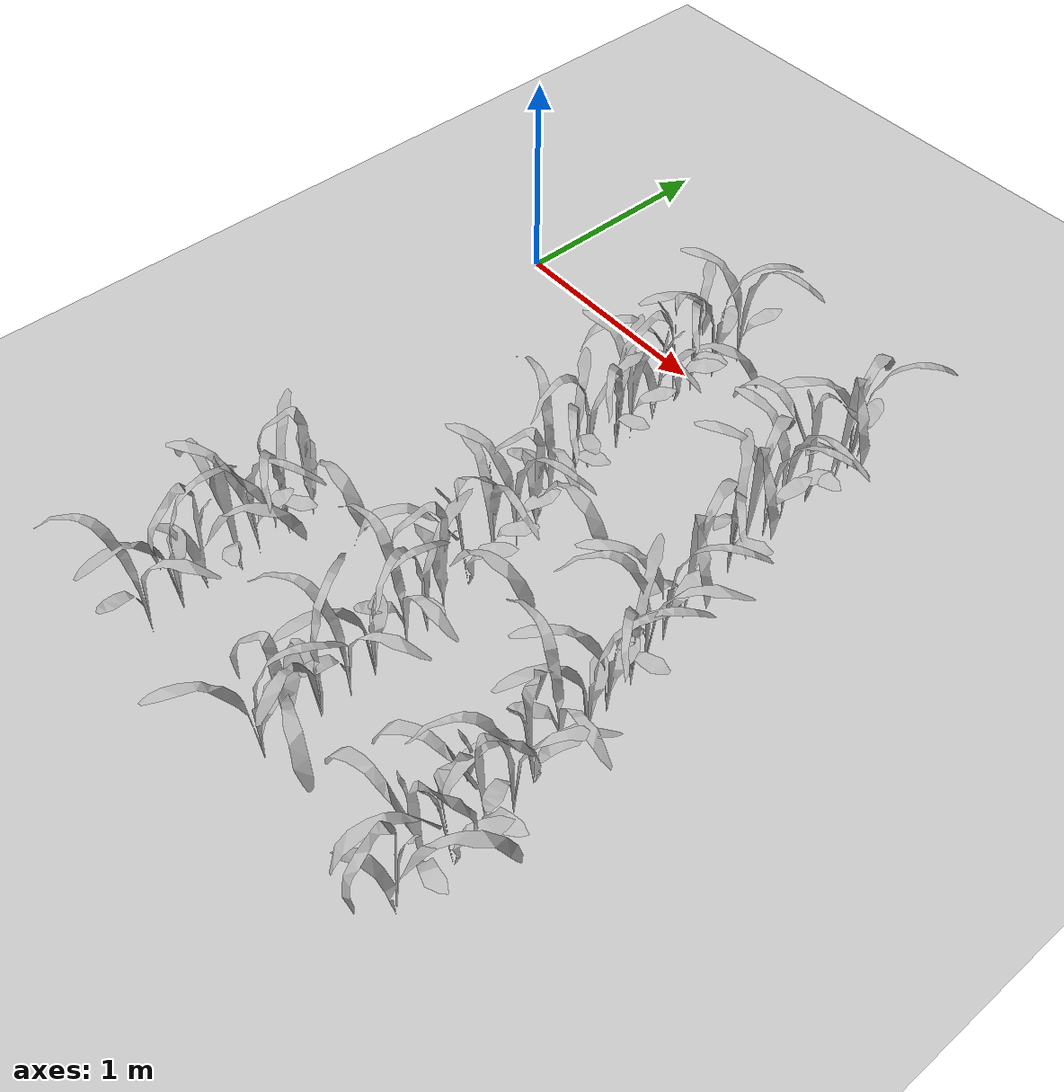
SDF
<sdf version="1.7">
 <world name="default">
  <model name="maize_02_0088">
   <pose>0.687417 -2.52858 -0.000245 -1.2e-05 -1.2e-05 2.77103</pose>
   <link name="maize_02_link">
    <inertial>
     <pose>0 0 0.01 0 -0 0</pose>
     <mass>0.3</mass>
     <inertia>
      <ixx>0.00334167</ixx>
      <ixy>0</ixy>
      <ixz>0</ixz>
      <iyy>0.00334167</iyy>
      <iyz>0</iyz>
      <izz>1.66667e-05</izz>
     </inertia>
     <pose>0 0 0.1 0 -0 0</pose>
    </inertial>
    <collision name="collision">
     <pose>0 0 0.2 0 -0 0</pose>
     <geometry><box><size>0.02 0.02 0.4</size></box></geometry>
     <surface><friction><ode><mu>10</mu><mu2>10</mu2></ode></friction></surface>
    </collision>
    <visual name="visual">
     <geometry>
      <mesh><uri>model://maize_02/meshes/maize_02.dae</uri><scale>0.683166 0.683166 0.683166</scale></mesh>
     </geometry>
    </visual>
   </link>
   <static>0</static>
  </model>
  <model name="maize_02_0089">
   <pose>0.660309 -2.37815 -1e-06 -9.6e-05 -6e-06 0.592145</pose>
   <link name="maize_02_link">
    <inertial>
     <pose>0 0 0.01 0 -0 0</pose>
     <mass>0.3</mass>
     <inertia>
      <ixx>0.00334167</ixx>
      <ixy>0</ixy>
      <ixz>0</ixz>
      <iyy>0.00334167</iyy>
      <iyz>0</iyz>
      <izz>1.66667e-05</izz>
     </inertia>
     <pose>0 0 0.1 0 -0 0</pose>
    </inertial>
    <collision name="collision">
     <pose>0 0 0.2 0 -0 0</pose>
     <geometry><box><size>0.02 0.02 0.4</size></box></geometry>
     <surface><friction><ode><mu>10</mu><mu2>10</mu2></ode></friction></surface>
    </collision>
    <visual name="visual">
     <geometry>
      <mesh><uri>model://maize_02/meshes/maize_02.dae</uri><scale>0.683166 0.683166 0.683166</scale></mesh>
     </geometry>
    </visual>
   </link>
   <static>0</static>
  </model>
  <model name="maize_01_0090">
   <pose>0.645514 -2.25838 -1e-06 -6e-06 9.6e-05 1.65375</pose>
   <link name="maize_01_link">
    <inertial>
     <pose>0 0 0.01 0 -0 0</pose>
     <mass>0.3</mass>
     <inertia>
      <ixx>0.00334167</ixx>
      <ixy>0</ixy>
      <ixz>0</ixz>
      <iyy>0.00334167</iyy>
      <iyz>0</iyz>
      <izz>1.66667e-05</izz>
     </inertia>
     <pose>0 0 0.1 0 -0 0</pose>
    </inertial>
    <collision name="collision">
     <pose>0 0 0.2 0 -0 0</pose>
     <geometry><box><size>0.02 0.02 0.4</size></box></geometry>
     <surface><friction><ode><mu>10</mu><mu2>10</mu2></ode></friction></surface>
    </collision>
    <visual name="visual">
     <geometry>
      <mesh><uri>model://maize_01/meshes/maize_01.dae</uri><scale>0.683166 0.683166 0.683166</scale></mesh>
     </geometry>
    </visual>
   </link>
   <static>0</static>
  </model>
  <model name="maize_01_0091">
   <pose>0.661195 -2.10586 -1e-06 9.6e-05 6e-06 -2.4247</pose>
   <link name="maize_01_link">
    <inertial>
     <pose>0 0 0.01 0 -0 0</pose>
     <mass>0.3</mass>
     <inertia>
      <ixx>0.00334167</ixx>
      <ixy>0</ixy>
      <ixz>0</ixz>
      <iyy>0.00334167</iyy>
      <iyz>0</iyz>
      <izz>1.66667e-05</izz>
     </inertia>
     <pose>0 0 0.1 0 -0 0</pose>
    </inertial>
    <collision name="collision">
     <pose>0 0 0.2 0 -0 0</pose>
     <geometry><box><size>0.02 0.02 0.4</size></box></geometry>
     <surface><friction><ode><mu>10</mu><mu2>10</mu2></ode></friction></surface>
    </collision>
    <visual name="visual">
     <geometry>
      <mesh><uri>model://maize_01/meshes/maize_01.dae</uri><scale>0.683166 0.683166 0.683166</scale></mesh>
     </geometry>
    </visual>
   </link>
   <static>0</static>
  </model>
  <model name="maize_02_0092">
   <pose>0.621154 -2.00023 -1e-06 -9.6e-05 6e-06 -0.539174</pose>
   <link name="maize_02_link">
    <inertial>
     <pose>0 0 0.01 0 -0 0</pose>
     <mass>0.3</mass>
     <inertia>
      <ixx>0.00334167</ixx>
      <ixy>0</ixy>
      <ixz>0</ixz>
      <iyy>0.00334167</iyy>
      <iyz>0</iyz>
      <izz>1.66667e-05</izz>
     </inertia>
     <pose>0 0 0.1 0 -0 0</pose>
    </inertial>
    <collision name="collision">
     <pose>0 0 0.2 0 -0 0</pose>
     <geometry><box><size>0.02 0.02 0.4</size></box></geometry>
     <surface><friction><ode><mu>10</mu><mu2>10</mu2></ode></friction></surface>
    </collision>
    <visual name="visual">
     <geometry>
      <mesh><uri>model://maize_02/meshes/maize_02.dae</uri><scale>0.683166 0.683166 0.683166</scale></mesh>
     </geometry>
    </visual>
   </link>
   <static>0</static>
  </model>
  <model name="maize_02_0093">
   <pose>0.619023 -1.85504 -1e-06 -6e-06 -9.6e-05 -1.67741</pose>
   <link name="maize_02_link">
    <inertial>
     <pose>0 0 0.01 0 -0 0</pose>
     <mass>0.3</mass>
     <inertia>
      <ixx>0.00334167</ixx>
      <ixy>0</ixy>
      <ixz>0</ixz>
      <iyy>0.00334167</iyy>
      <iyz>0</iyz>
      <izz>1.66667e-05</izz>
     </inertia>
     <pose>0 0 0.1 0 -0 0</pose>
    </inertial>
    <collision name="collision">
     <pose>0 0 0.2 0 -0 0</pose>
     <geometry><box><size>0.02 0.02 0.4</size></box></geometry>
     <surface><friction><ode><mu>10</mu><mu2>10</mu2></ode></friction></surface>
    </collision>
    <visual name="visual">
     <geometry>
      <mesh><uri>model://maize_02/meshes/maize_02.dae</uri><scale>0.683166 0.683166 0.683166</scale></mesh>
     </geometry>
    </visual>
   </link>
   <static>0</static>
  </model>
  <model name="maize_01_0094">
   <pose>0.606161 -1.7309 -1e-06 -9.6e-05 -6e-06 0.743839</pose>
   <link name="maize_01_link">
    <inertial>
     <pose>0 0 0.01 0 -0 0</pose>
     <mass>0.3</mass>
     <inertia>
      <ixx>0.00334167</ixx>
      <ixy>0</ixy>
      <ixz>0</ixz>
      <iyy>0.00334167</iyy>
      <iyz>0</iyz>
      <izz>1.66667e-05</izz>
     </inertia>
     <pose>0 0 0.1 0 -0 0</pose>
    </inertial>
    <collision name="collision">
     <pose>0 0 0.2 0 -0 0</pose>
     <geometry><box><size>0.02 0.02 0.4</size></box></geometry>
     <surface><friction><ode><mu>10</mu><mu2>10</mu2></ode></friction></surface>
    </collision>
    <visual name="visual">
     <geometry>
      <mesh><uri>model://maize_01/meshes/maize_01.dae</uri><scale>0.683166 0.683166 0.683166</scale></mesh>
     </geometry>
    </visual>
   </link>
   <static>0</static>
  </model>
  <model name="maize_02_0125">
   <pose>1.41549 -2.50929 -1e-06 -6e-06 9.6e-05 0.120019</pose>
   <link name="maize_02_link">
    <inertial>
     <pose>0 0 0.01 0 -0 0</pose>
     <mass>0.3</mass>
     <inertia>
      <ixx>0.00334167</ixx>
      <ixy>0</ixy>
      <ixz>0</ixz>
      <iyy>0.00334167</iyy>
      <iyz>0</iyz>
      <izz>1.66667e-05</izz>
     </inertia>
     <pose>0 0 0.1 0 -0 0</pose>
    </inertial>
    <collision name="collision">
     <pose>0 0 0.2 0 -0 0</pose>
     <geometry><box><size>0.02 0.02 0.4</size></box></geometry>
     <surface><friction><ode><mu>10</mu><mu2>10</mu2></ode></friction></surface>
    </collision>
    <visual name="visual">
     <geometry>
      <mesh><uri>model://maize_02/meshes/maize_02.dae</uri><scale>0.683166 0.683166 0.683166</scale></mesh>
     </geometry>
    </visual>
   </link>
   <static>0</static>
  </model>
  <model name="maize_01_0126">
   <pose>1.40513 -2.3932 -1e-06 -6e-06 9.6e-05 0.423891</pose>
   <link name="maize_01_link">
    <inertial>
     <pose>0 0 0.01 0 -0 0</pose>
     <mass>0.3</mass>
     <inertia>
      <ixx>0.00334167</ixx>
      <ixy>0</ixy>
      <ixz>0</ixz>
      <iyy>0.00334167</iyy>
      <iyz>0</iyz>
      <izz>1.66667e-05</izz>
     </inertia>
     <pose>0 0 0.1 0 -0 0</pose>
    </inertial>
    <collision name="collision">
     <pose>0 0 0.2 0 -0 0</pose>
     <geometry><box><size>0.02 0.02 0.4</size></box></geometry>
     <surface><friction><ode><mu>10</mu><mu2>10</mu2></ode></friction></surface>
    </collision>
    <visual name="visual">
     <geometry>
      <mesh><uri>model://maize_01/meshes/maize_01.dae</uri><scale>0.683166 0.683166 0.683166</scale></mesh>
     </geometry>
    </visual>
   </link>
   <static>0</static>
  </model>
  <model name="maize_02_0127">
   <pose>1.41237 -2.25752 -1e-06 9.6e-05 -6e-06 1.07697</pose>
   <link name="maize_02_link">
    <inertial>
     <pose>0 0 0.01 0 -0 0</pose>
     <mass>0.3</mass>
     <inertia>
      <ixx>0.00334167</ixx>
      <ixy>0</ixy>
      <ixz>0</ixz>
      <iyy>0.00334167</iyy>
      <iyz>0</iyz>
      <izz>1.66667e-05</izz>
     </inertia>
     <pose>0 0 0.1 0 -0 0</pose>
    </inertial>
    <collision name="collision">
     <pose>0 0 0.2 0 -0 0</pose>
     <geometry><box><size>0.02 0.02 0.4</size></box></geometry>
     <surface><friction><ode><mu>10</mu><mu2>10</mu2></ode></friction></surface>
    </collision>
    <visual name="visual">
     <geometry>
      <mesh><uri>model://maize_02/meshes/maize_02.dae</uri><scale>0.683166 0.683166 0.683166</scale></mesh>
     </geometry>
    </visual>
   </link>
   <static>0</static>
  </model>
  <model name="maize_02_0128">
   <pose>1.41272 -2.12539 -1e-06 -6e-06 -9.6e-05 2.60851</pose>
   <link name="maize_02_link">
    <inertial>
     <pose>0 0 0.01 0 -0 0</pose>
     <mass>0.3</mass>
     <inertia>
      <ixx>0.00334167</ixx>
      <ixy>0</ixy>
      <ixz>0</ixz>
      <iyy>0.00334167</iyy>
      <iyz>0</iyz>
      <izz>1.66667e-05</izz>
     </inertia>
     <pose>0 0 0.1 0 -0 0</pose>
    </inertial>
    <collision name="collision">
     <pose>0 0 0.2 0 -0 0</pose>
     <geometry><box><size>0.02 0.02 0.4</size></box></geometry>
     <surface><friction><ode><mu>10</mu><mu2>10</mu2></ode></friction></surface>
    </collision>
    <visual name="visual">
     <geometry>
      <mesh><uri>model://maize_02/meshes/maize_02.dae</uri><scale>0.683166 0.683166 0.683166</scale></mesh>
     </geometry>
    </visual>
   </link>
   <static>0</static>
  </model>
  <model name="maize_02_0129">
   <pose>1.3922 -2.00037 -1e-06 -6e-06 9.6e-05 0.413829</pose>
   <link name="maize_02_link">
    <inertial>
     <pose>0 0 0.01 0 -0 0</pose>
     <mass>0.3</mass>
     <inertia>
      <ixx>0.00334167</ixx>
      <ixy>0</ixy>
      <ixz>0</ixz>
      <iyy>0.00334167</iyy>
      <iyz>0</iyz>
      <izz>1.66667e-05</izz>
     </inertia>
     <pose>0 0 0.1 0 -0 0</pose>
    </inertial>
    <collision name="collision">
     <pose>0 0 0.2 0 -0 0</pose>
     <geometry><box><size>0.02 0.02 0.4</size></box></geometry>
     <surface><friction><ode><mu>10</mu><mu2>10</mu2></ode></friction></surface>
    </collision>
    <visual name="visual">
     <geometry>
      <mesh><uri>model://maize_02/meshes/maize_02.dae</uri><scale>0.683166 0.683166 0.683166</scale></mesh>
     </geometry>
    </visual>
   </link>
   <static>0</static>
  </model>
  <model name="maize_02_0130">
   <pose>1.38115 -1.84467 -0.000245 1.2e-05 1.1e-05 2.12734</pose>
   <link name="maize_02_link">
    <inertial>
     <pose>0 0 0.01 0 -0 0</pose>
     <mass>0.3</mass>
     <inertia>
      <ixx>0.00334167</ixx>
      <ixy>0</ixy>
      <ixz>0</ixz>
      <iyy>0.00334167</iyy>
      <iyz>0</iyz>
      <izz>1.66667e-05</izz>
     </inertia>
     <pose>0 0 0.1 0 -0 0</pose>
    </inertial>
    <collision name="collision">
     <pose>0 0 0.2 0 -0 0</pose>
     <geometry><box><size>0.02 0.02 0.4</size></box></geometry>
     <surface><friction><ode><mu>10</mu><mu2>10</mu2></ode></friction></surface>
    </collision>
    <visual name="visual">
     <geometry>
      <mesh><uri>model://maize_02/meshes/maize_02.dae</uri><scale>0.683166 0.683166 0.683166</scale></mesh>
     </geometry>
    </visual>
   </link>
   <static>0</static>
  </model>
  <model name="maize_02_0131">
   <pose>1.35506 -1.7265 -0.000245 -1.2e-05 1.2e-05 -2.16768</pose>
   <link name="maize_02_link">
    <inertial>
     <pose>0 0 0.01 0 -0 0</pose>
     <mass>0.3</mass>
     <inertia>
      <ixx>0.00334167</ixx>
      <ixy>0</ixy>
      <ixz>0</ixz>
      <iyy>0.00334167</iyy>
      <iyz>0</iyz>
      <izz>1.66667e-05</izz>
     </inertia>
     <pose>0 0 0.1 0 -0 0</pose>
    </inertial>
    <collision name="collision">
     <pose>0 0 0.2 0 -0 0</pose>
     <geometry><box><size>0.02 0.02 0.4</size></box></geometry>
     <surface><friction><ode><mu>10</mu><mu2>10</mu2></ode></friction></surface>
    </collision>
    <visual name="visual">
     <geometry>
      <mesh><uri>model://maize_02/meshes/maize_02.dae</uri><scale>0.683166 0.683166 0.683166</scale></mesh>
     </geometry>
    </visual>
   </link>
   <static>0</static>
  </model>
  <model name="maize_01_0132">
   <pose>1.31267 -1.6161 -0.000245 1.1e-05 1.2e-05 1.03121</pose>
   <link name="maize_01_link">
    <inertial>
     <pose>0 0 0.01 0 -0 0</pose>
     <mass>0.3</mass>
     <inertia>
      <ixx>0.00334167</ixx>
      <ixy>0</ixy>
      <ixz>0</ixz>
      <iyy>0.00334167</iyy>
      <iyz>0</iyz>
      <izz>1.66667e-05</izz>
     </inertia>
     <pose>0 0 0.1 0 -0 0</pose>
    </inertial>
    <collision name="collision">
     <pose>0 0 0.2 0 -0 0</pose>
     <geometry><box><size>0.02 0.02 0.4</size></box></geometry>
     <surface><friction><ode><mu>10</mu><mu2>10</mu2></ode></friction></surface>
    </collision>
    <visual name="visual">
     <geometry>
      <mesh><uri>model://maize_01/meshes/maize_01.dae</uri><scale>0.683166 0.683166 0.683166</scale></mesh>
     </geometry>
    </visual>
   </link>
   <static>0</static>
  </model>
  <model name="maize_01_0133">
   <pose>1.28529 -1.46938 -1e-06 -9.6e-05 -6e-06 -1.36787</pose>
   <link name="maize_01_link">
    <inertial>
     <pose>0 0 0.01 0 -0 0</pose>
     <mass>0.3</mass>
     <inertia>
      <ixx>0.00334167</ixx>
      <ixy>0</ixy>
      <ixz>0</ixz>
      <iyy>0.00334167</iyy>
      <iyz>0</iyz>
      <izz>1.66667e-05</izz>
     </inertia>
     <pose>0 0 0.1 0 -0 0</pose>
    </inertial>
    <collision name="collision">
     <pose>0 0 0.2 0 -0 0</pose>
     <geometry><box><size>0.02 0.02 0.4</size></box></geometry>
     <surface><friction><ode><mu>10</mu><mu2>10</mu2></ode></friction></surface>
    </collision>
    <visual name="visual">
     <geometry>
      <mesh><uri>model://maize_01/meshes/maize_01.dae</uri><scale>0.683166 0.683166 0.683166</scale></mesh>
     </geometry>
    </visual>
   </link>
   <static>0</static>
  </model>
  <model name="maize_02_0134">
   <pose>1.28055 -1.33179 -1e-06 -9.6e-05 -6e-06 -1.25646</pose>
   <link name="maize_02_link">
    <inertial>
     <pose>0 0 0.01 0 -0 0</pose>
     <mass>0.3</mass>
     <inertia>
      <ixx>0.00334167</ixx>
      <ixy>0</ixy>
      <ixz>0</ixz>
      <iyy>0.00334167</iyy>
      <iyz>0</iyz>
      <izz>1.66667e-05</izz>
     </inertia>
     <pose>0 0 0.1 0 -0 0</pose>
    </inertial>
    <collision name="collision">
     <pose>0 0 0.2 0 -0 0</pose>
     <geometry><box><size>0.02 0.02 0.4</size></box></geometry>
     <surface><friction><ode><mu>10</mu><mu2>10</mu2></ode></friction></surface>
    </collision>
    <visual name="visual">
     <geometry>
      <mesh><uri>model://maize_02/meshes/maize_02.dae</uri><scale>0.683166 0.683166 0.683166</scale></mesh>
     </geometry>
    </visual>
   </link>
   <static>0</static>
  </model>
  <model name="maize_02_0135">
   <pose>1.25959 -1.20017 -1e-06 -6e-06 -9.6e-05 -0.77754</pose>
   <link name="maize_02_link">
    <inertial>
     <pose>0 0 0.01 0 -0 0</pose>
     <mass>0.3</mass>
     <inertia>
      <ixx>0.00334167</ixx>
      <ixy>0</ixy>
      <ixz>0</ixz>
      <iyy>0.00334167</iyy>
      <iyz>0</iyz>
      <izz>1.66667e-05</izz>
     </inertia>
     <pose>0 0 0.1 0 -0 0</pose>
    </inertial>
    <collision name="collision">
     <pose>0 0 0.2 0 -0 0</pose>
     <geometry><box><size>0.02 0.02 0.4</size></box></geometry>
     <surface><friction><ode><mu>10</mu><mu2>10</mu2></ode></friction></surface>
    </collision>
    <visual name="visual">
     <geometry>
      <mesh><uri>model://maize_02/meshes/maize_02.dae</uri><scale>0.683166 0.683166 0.683166</scale></mesh>
     </geometry>
    </visual>
   </link>
   <static>0</static>
  </model>
  <model name="maize_01_0136">
   <pose>1.27124 -1.11322 -0.000245 1.2e-05 1.2e-05 0.73461</pose>
   <link name="maize_01_link">
    <inertial>
     <pose>0 0 0.01 0 -0 0</pose>
     <mass>0.3</mass>
     <inertia>
      <ixx>0.00334167</ixx>
      <ixy>0</ixy>
      <ixz>0</ixz>
      <iyy>0.00334167</iyy>
      <iyz>0</iyz>
      <izz>1.66667e-05</izz>
     </inertia>
     <pose>0 0 0.1 0 -0 0</pose>
    </inertial>
    <collision name="collision">
     <pose>0 0 0.2 0 -0 0</pose>
     <geometry><box><size>0.02 0.02 0.4</size></box></geometry>
     <surface><friction><ode><mu>10</mu><mu2>10</mu2></ode></friction></surface>
    </collision>
    <visual name="visual">
     <geometry>
      <mesh><uri>model://maize_01/meshes/maize_01.dae</uri><scale>0.683166 0.683166 0.683166</scale></mesh>
     </geometry>
    </visual>
   </link>
   <static>0</static>
  </model>
  <model name="maize_02_0137">
   <pose>1.1906 -0.969058 -0.000245 1.2e-05 1.2e-05 1.7714</pose>
   <link name="maize_02_link">
    <inertial>
     <pose>0 0 0.01 0 -0 0</pose>
     <mass>0.3</mass>
     <inertia>
      <ixx>0.00334167</ixx>
      <ixy>0</ixy>
      <ixz>0</ixz>
      <iyy>0.00334167</iyy>
      <iyz>0</iyz>
      <izz>1.66667e-05</izz>
     </inertia>
     <pose>0 0 0.1 0 -0 0</pose>
    </inertial>
    <collision name="collision">
     <pose>0 0 0.2 0 -0 0</pose>
     <geometry><box><size>0.02 0.02 0.4</size></box></geometry>
     <surface><friction><ode><mu>10</mu><mu2>10</mu2></ode></friction></surface>
    </collision>
    <visual name="visual">
     <geometry>
      <mesh><uri>model://maize_02/meshes/maize_02.dae</uri><scale>0.683166 0.683166 0.683166</scale></mesh>
     </geometry>
    </visual>
   </link>
   <static>0</static>
  </model>
  <model name="maize_02_0138">
   <pose>1.17972 -0.821595 -0.000245 1.2e-05 -1.2e-05 -1.7872</pose>
   <link name="maize_02_link">
    <inertial>
     <pose>0 0 0.01 0 -0 0</pose>
     <mass>0.3</mass>
     <inertia>
      <ixx>0.00334167</ixx>
      <ixy>0</ixy>
      <ixz>0</ixz>
      <iyy>0.00334167</iyy>
      <iyz>0</iyz>
      <izz>1.66667e-05</izz>
     </inertia>
     <pose>0 0 0.1 0 -0 0</pose>
    </inertial>
    <collision name="collision">
     <pose>0 0 0.2 0 -0 0</pose>
     <geometry><box><size>0.02 0.02 0.4</size></box></geometry>
     <surface><friction><ode><mu>10</mu><mu2>10</mu2></ode></friction></surface>
    </collision>
    <visual name="visual">
     <geometry>
      <mesh><uri>model://maize_02/meshes/maize_02.dae</uri><scale>0.683166 0.683166 0.683166</scale></mesh>
     </geometry>
    </visual>
   </link>
   <static>0</static>
  </model>
  <model name="maize_02_0139">
   <pose>1.13581 -0.705897 -0.000245 1.2e-05 -1.2e-05 -2.50967</pose>
   <link name="maize_02_link">
    <inertial>
     <pose>0 0 0.01 0 -0 0</pose>
     <mass>0.3</mass>
     <inertia>
      <ixx>0.00334167</ixx>
      <ixy>0</ixy>
      <ixz>0</ixz>
      <iyy>0.00334167</iyy>
      <iyz>0</iyz>
      <izz>1.66667e-05</izz>
     </inertia>
     <pose>0 0 0.1 0 -0 0</pose>
    </inertial>
    <collision name="collision">
     <pose>0 0 0.2 0 -0 0</pose>
     <geometry><box><size>0.02 0.02 0.4</size></box></geometry>
     <surface><friction><ode><mu>10</mu><mu2>10</mu2></ode></friction></surface>
    </collision>
    <visual name="visual">
     <geometry>
      <mesh><uri>model://maize_02/meshes/maize_02.dae</uri><scale>0.683166 0.683166 0.683166</scale></mesh>
     </geometry>
    </visual>
   </link>
   <static>0</static>
  </model>
  <model name="maize_02_0140">
   <pose>1.13915 -0.545653 -0.000245 1.2e-05 -1.2e-05 -1.9463</pose>
   <link name="maize_02_link">
    <inertial>
     <pose>0 0 0.01 0 -0 0</pose>
     <mass>0.3</mass>
     <inertia>
      <ixx>0.00334167</ixx>
      <ixy>0</ixy>
      <ixz>0</ixz>
      <iyy>0.00334167</iyy>
      <iyz>0</iyz>
      <izz>1.66667e-05</izz>
     </inertia>
     <pose>0 0 0.1 0 -0 0</pose>
    </inertial>
    <collision name="collision">
     <pose>0 0 0.2 0 -0 0</pose>
     <geometry><box><size>0.02 0.02 0.4</size></box></geometry>
     <surface><friction><ode><mu>10</mu><mu2>10</mu2></ode></friction></surface>
    </collision>
    <visual name="visual">
     <geometry>
      <mesh><uri>model://maize_02/meshes/maize_02.dae</uri><scale>0.683166 0.683166 0.683166</scale></mesh>
     </geometry>
    </visual>
   </link>
   <static>0</static>
  </model>
  <model name="maize_02_0141">
   <pose>1.12141 -0.447311 -0.000245 -1.2e-05 -1.2e-05 -1.03619</pose>
   <link name="maize_02_link">
    <inertial>
     <pose>0 0 0.01 0 -0 0</pose>
     <mass>0.3</mass>
     <inertia>
      <ixx>0.00334167</ixx>
      <ixy>0</ixy>
      <ixz>0</ixz>
      <iyy>0.00334167</iyy>
      <iyz>0</iyz>
      <izz>1.66667e-05</izz>
     </inertia>
     <pose>0 0 0.1 0 -0 0</pose>
    </inertial>
    <collision name="collision">
     <pose>0 0 0.2 0 -0 0</pose>
     <geometry><box><size>0.02 0.02 0.4</size></box></geometry>
     <surface><friction><ode><mu>10</mu><mu2>10</mu2></ode></friction></surface>
    </collision>
    <visual name="visual">
     <geometry>
      <mesh><uri>model://maize_02/meshes/maize_02.dae</uri><scale>0.683166 0.683166 0.683166</scale></mesh>
     </geometry>
    </visual>
   </link>
   <static>0</static>
  </model>
  <model name="maize_01_0142">
   <pose>1.10629 -0.29845 -0.000245 -1.2e-05 1.2e-05 1.37096</pose>
   <link name="maize_01_link">
    <inertial>
     <pose>0 0 0.01 0 -0 0</pose>
     <mass>0.3</mass>
     <inertia>
      <ixx>0.00334167</ixx>
      <ixy>0</ixy>
      <ixz>0</ixz>
      <iyy>0.00334167</iyy>
      <iyz>0</iyz>
      <izz>1.66667e-05</izz>
     </inertia>
     <pose>0 0 0.1 0 -0 0</pose>
    </inertial>
    <collision name="collision">
     <pose>0 0 0.2 0 -0 0</pose>
     <geometry><box><size>0.02 0.02 0.4</size></box></geometry>
     <surface><friction><ode><mu>10</mu><mu2>10</mu2></ode></friction></surface>
    </collision>
    <visual name="visual">
     <geometry>
      <mesh><uri>model://maize_01/meshes/maize_01.dae</uri><scale>0.683166 0.683166 0.683166</scale></mesh>
     </geometry>
    </visual>
   </link>
   <static>0</static>
  </model>
  <model name="maize_01_0143">
   <pose>1.08696 -0.155411 -0.000245 1.2e-05 -1.2e-05 -1.45827</pose>
   <link name="maize_01_link">
    <inertial>
     <pose>0 0 0.01 0 -0 0</pose>
     <mass>0.3</mass>
     <inertia>
      <ixx>0.00334167</ixx>
      <ixy>0</ixy>
      <ixz>0</ixz>
      <iyy>0.00334167</iyy>
      <iyz>0</iyz>
      <izz>1.66667e-05</izz>
     </inertia>
     <pose>0 0 0.1 0 -0 0</pose>
    </inertial>
    <collision name="collision">
     <pose>0 0 0.2 0 -0 0</pose>
     <geometry><box><size>0.02 0.02 0.4</size></box></geometry>
     <surface><friction><ode><mu>10</mu><mu2>10</mu2></ode></friction></surface>
    </collision>
    <visual name="visual">
     <geometry>
      <mesh><uri>model://maize_01/meshes/maize_01.dae</uri><scale>0.683166 0.683166 0.683166</scale></mesh>
     </geometry>
    </visual>
   </link>
   <static>0</static>
  </model>
  <model name="maize_02_0144">
   <pose>1.08261 -0.046526 -0.000245 1.2e-05 -1.1e-05 -1.8879</pose>
   <link name="maize_02_link">
    <inertial>
     <pose>0 0 0.01 0 -0 0</pose>
     <mass>0.3</mass>
     <inertia>
      <ixx>0.00334167</ixx>
      <ixy>0</ixy>
      <ixz>0</ixz>
      <iyy>0.00334167</iyy>
      <iyz>0</iyz>
      <izz>1.66667e-05</izz>
     </inertia>
     <pose>0 0 0.1 0 -0 0</pose>
    </inertial>
    <collision name="collision">
     <pose>0 0 0.2 0 -0 0</pose>
     <geometry><box><size>0.02 0.02 0.4</size></box></geometry>
     <surface><friction><ode><mu>10</mu><mu2>10</mu2></ode></friction></surface>
    </collision>
    <visual name="visual">
     <geometry>
      <mesh><uri>model://maize_02/meshes/maize_02.dae</uri><scale>0.683166 0.683166 0.683166</scale></mesh>
     </geometry>
    </visual>
   </link>
   <static>0</static>
  </model>
  <model name="maize_02_0145">
   <pose>1.08823 0.081273 -0.000245 -1.2e-05 -1.2e-05 0.025687</pose>
   <link name="maize_02_link">
    <inertial>
     <pose>0 0 0.01 0 -0 0</pose>
     <mass>0.3</mass>
     <inertia>
      <ixx>0.00334167</ixx>
      <ixy>0</ixy>
      <ixz>0</ixz>
      <iyy>0.00334167</iyy>
      <iyz>0</iyz>
      <izz>1.66667e-05</izz>
     </inertia>
     <pose>0 0 0.1 0 -0 0</pose>
    </inertial>
    <collision name="collision">
     <pose>0 0 0.2 0 -0 0</pose>
     <geometry><box><size>0.02 0.02 0.4</size></box></geometry>
     <surface><friction><ode><mu>10</mu><mu2>10</mu2></ode></friction></surface>
    </collision>
    <visual name="visual">
     <geometry>
      <mesh><uri>model://maize_02/meshes/maize_02.dae</uri><scale>0.683166 0.683166 0.683166</scale></mesh>
     </geometry>
    </visual>
   </link>
   <static>0</static>
  </model>
  <model name="maize_02_0146">
   <pose>1.09855 0.227697 -0.000245 -1.2e-05 -1.2e-05 -0.800553</pose>
   <link name="maize_02_link">
    <inertial>
     <pose>0 0 0.01 0 -0 0</pose>
     <mass>0.3</mass>
     <inertia>
      <ixx>0.00334167</ixx>
      <ixy>0</ixy>
      <ixz>0</ixz>
      <iyy>0.00334167</iyy>
      <iyz>0</iyz>
      <izz>1.66667e-05</izz>
     </inertia>
     <pose>0 0 0.1 0 -0 0</pose>
    </inertial>
    <collision name="collision">
     <pose>0 0 0.2 0 -0 0</pose>
     <geometry><box><size>0.02 0.02 0.4</size></box></geometry>
     <surface><friction><ode><mu>10</mu><mu2>10</mu2></ode></friction></surface>
    </collision>
    <visual name="visual">
     <geometry>
      <mesh><uri>model://maize_02/meshes/maize_02.dae</uri><scale>0.683166 0.683166 0.683166</scale></mesh>
     </geometry>
    </visual>
   </link>
   <static>0</static>
  </model>
  <model name="maize_01_0164">
   <pose>2.18876 -2.50728 -0.000245 1.2e-05 -1.2e-05 1.72864</pose>
   <link name="maize_01_link">
    <inertial>
     <pose>0 0 0.01 0 -0 0</pose>
     <mass>0.3</mass>
     <inertia>
      <ixx>0.00334167</ixx>
      <ixy>0</ixy>
      <ixz>0</ixz>
      <iyy>0.00334167</iyy>
      <iyz>0</iyz>
      <izz>1.66667e-05</izz>
     </inertia>
     <pose>0 0 0.1 0 -0 0</pose>
    </inertial>
    <collision name="collision">
     <pose>0 0 0.2 0 -0 0</pose>
     <geometry><box><size>0.02 0.02 0.4</size></box></geometry>
     <surface><friction><ode><mu>10</mu><mu2>10</mu2></ode></friction></surface>
    </collision>
    <visual name="visual">
     <geometry>
      <mesh><uri>model://maize_01/meshes/maize_01.dae</uri><scale>0.683166 0.683166 0.683166</scale></mesh>
     </geometry>
    </visual>
   </link>
   <static>0</static>
  </model>
  <model name="maize_01_0165">
   <pose>2.15943 -2.36107 -0.000245 -1.1e-05 -1.2e-05 -2.1875</pose>
   <link name="maize_01_link">
    <inertial>
     <pose>0 0 0.01 0 -0 0</pose>
     <mass>0.3</mass>
     <inertia>
      <ixx>0.00334167</ixx>
      <ixy>0</ixy>
      <ixz>0</ixz>
      <iyy>0.00334167</iyy>
      <iyz>0</iyz>
      <izz>1.66667e-05</izz>
     </inertia>
     <pose>0 0 0.1 0 -0 0</pose>
    </inertial>
    <collision name="collision">
     <pose>0 0 0.2 0 -0 0</pose>
     <geometry><box><size>0.02 0.02 0.4</size></box></geometry>
     <surface><friction><ode><mu>10</mu><mu2>10</mu2></ode></friction></surface>
    </collision>
    <visual name="visual">
     <geometry>
      <mesh><uri>model://maize_01/meshes/maize_01.dae</uri><scale>0.683166 0.683166 0.683166</scale></mesh>
     </geometry>
    </visual>
   </link>
   <static>0</static>
  </model>
  <model name="maize_01_0166">
   <pose>2.17335 -2.25363 -0.000245 1.1e-05 -1.2e-05 -1.0264</pose>
   <link name="maize_01_link">
    <inertial>
     <pose>0 0 0.01 0 -0 0</pose>
     <mass>0.3</mass>
     <inertia>
      <ixx>0.00334167</ixx>
      <ixy>0</ixy>
      <ixz>0</ixz>
      <iyy>0.00334167</iyy>
      <iyz>0</iyz>
      <izz>1.66667e-05</izz>
     </inertia>
     <pose>0 0 0.1 0 -0 0</pose>
    </inertial>
    <collision name="collision">
     <pose>0 0 0.2 0 -0 0</pose>
     <geometry><box><size>0.02 0.02 0.4</size></box></geometry>
     <surface><friction><ode><mu>10</mu><mu2>10</mu2></ode></friction></surface>
    </collision>
    <visual name="visual">
     <geometry>
      <mesh><uri>model://maize_01/meshes/maize_01.dae</uri><scale>0.683166 0.683166 0.683166</scale></mesh>
     </geometry>
    </visual>
   </link>
   <static>0</static>
  </model>
  <model name="maize_01_0167">
   <pose>2.163 -2.09353 -0.000245 -1.1e-05 -1.2e-05 -1.92198</pose>
   <link name="maize_01_link">
    <inertial>
     <pose>0 0 0.01 0 -0 0</pose>
     <mass>0.3</mass>
     <inertia>
      <ixx>0.00334167</ixx>
      <ixy>0</ixy>
      <ixz>0</ixz>
      <iyy>0.00334167</iyy>
      <iyz>0</iyz>
      <izz>1.66667e-05</izz>
     </inertia>
     <pose>0 0 0.1 0 -0 0</pose>
    </inertial>
    <collision name="collision">
     <pose>0 0 0.2 0 -0 0</pose>
     <geometry><box><size>0.02 0.02 0.4</size></box></geometry>
     <surface><friction><ode><mu>10</mu><mu2>10</mu2></ode></friction></surface>
    </collision>
    <visual name="visual">
     <geometry>
      <mesh><uri>model://maize_01/meshes/maize_01.dae</uri><scale>0.683166 0.683166 0.683166</scale></mesh>
     </geometry>
    </visual>
   </link>
   <static>0</static>
  </model>
  <model name="maize_02_0168">
   <pose>2.15395 -1.97072 -0.000245 1.2e-05 1.2e-05 3.12644</pose>
   <link name="maize_02_link">
    <inertial>
     <pose>0 0 0.01 0 -0 0</pose>
     <mass>0.3</mass>
     <inertia>
      <ixx>0.00334167</ixx>
      <ixy>0</ixy>
      <ixz>0</ixz>
      <iyy>0.00334167</iyy>
      <iyz>0</iyz>
      <izz>1.66667e-05</izz>
     </inertia>
     <pose>0 0 0.1 0 -0 0</pose>
    </inertial>
    <collision name="collision">
     <pose>0 0 0.2 0 -0 0</pose>
     <geometry><box><size>0.02 0.02 0.4</size></box></geometry>
     <surface><friction><ode><mu>10</mu><mu2>10</mu2></ode></friction></surface>
    </collision>
    <visual name="visual">
     <geometry>
      <mesh><uri>model://maize_02/meshes/maize_02.dae</uri><scale>0.683166 0.683166 0.683166</scale></mesh>
     </geometry>
    </visual>
   </link>
   <static>0</static>
  </model>
  <model name="maize_01_0169">
   <pose>2.11388 -1.84617 -0.000245 -1.2e-05 1.2e-05 -0.772921</pose>
   <link name="maize_01_link">
    <inertial>
     <pose>0 0 0.01 0 -0 0</pose>
     <mass>0.3</mass>
     <inertia>
      <ixx>0.00334167</ixx>
      <ixy>0</ixy>
      <ixz>0</ixz>
      <iyy>0.00334167</iyy>
      <iyz>0</iyz>
      <izz>1.66667e-05</izz>
     </inertia>
     <pose>0 0 0.1 0 -0 0</pose>
    </inertial>
    <collision name="collision">
     <pose>0 0 0.2 0 -0 0</pose>
     <geometry><box><size>0.02 0.02 0.4</size></box></geometry>
     <surface><friction><ode><mu>10</mu><mu2>10</mu2></ode></friction></surface>
    </collision>
    <visual name="visual">
     <geometry>
      <mesh><uri>model://maize_01/meshes/maize_01.dae</uri><scale>0.683166 0.683166 0.683166</scale></mesh>
     </geometry>
    </visual>
   </link>
   <static>0</static>
  </model>
  <model name="maize_02_0170">
   <pose>2.09047 -1.71312 -0.000245 -1.1e-05 1.2e-05 1.93584</pose>
   <link name="maize_02_link">
    <inertial>
     <pose>0 0 0.01 0 -0 0</pose>
     <mass>0.3</mass>
     <inertia>
      <ixx>0.00334167</ixx>
      <ixy>0</ixy>
      <ixz>0</ixz>
      <iyy>0.00334167</iyy>
      <iyz>0</iyz>
      <izz>1.66667e-05</izz>
     </inertia>
     <pose>0 0 0.1 0 -0 0</pose>
    </inertial>
    <collision name="collision">
     <pose>0 0 0.2 0 -0 0</pose>
     <geometry><box><size>0.02 0.02 0.4</size></box></geometry>
     <surface><friction><ode><mu>10</mu><mu2>10</mu2></ode></friction></surface>
    </collision>
    <visual name="visual">
     <geometry>
      <mesh><uri>model://maize_02/meshes/maize_02.dae</uri><scale>0.683166 0.683166 0.683166</scale></mesh>
     </geometry>
    </visual>
   </link>
   <static>0</static>
  </model>
  <model name="maize_02_0171">
   <pose>2.08967 -1.57129 -0.000245 1.2e-05 1.2e-05 0.254843</pose>
   <link name="maize_02_link">
    <inertial>
     <pose>0 0 0.01 0 -0 0</pose>
     <mass>0.3</mass>
     <inertia>
      <ixx>0.00334167</ixx>
      <ixy>0</ixy>
      <ixz>0</ixz>
      <iyy>0.00334167</iyy>
      <iyz>0</iyz>
      <izz>1.66667e-05</izz>
     </inertia>
     <pose>0 0 0.1 0 -0 0</pose>
    </inertial>
    <collision name="collision">
     <pose>0 0 0.2 0 -0 0</pose>
     <geometry><box><size>0.02 0.02 0.4</size></box></geometry>
     <surface><friction><ode><mu>10</mu><mu2>10</mu2></ode></friction></surface>
    </collision>
    <visual name="visual">
     <geometry>
      <mesh><uri>model://maize_02/meshes/maize_02.dae</uri><scale>0.683166 0.683166 0.683166</scale></mesh>
     </geometry>
    </visual>
   </link>
   <static>0</static>
  </model>
  <model name="maize_02_0172">
   <pose>2.06221 -1.45087 -0.000245 -1.2e-05 -1.2e-05 -0.103339</pose>
   <link name="maize_02_link">
    <inertial>
     <pose>0 0 0.01 0 -0 0</pose>
     <mass>0.3</mass>
     <inertia>
      <ixx>0.00334167</ixx>
      <ixy>0</ixy>
      <ixz>0</ixz>
      <iyy>0.00334167</iyy>
      <iyz>0</iyz>
      <izz>1.66667e-05</izz>
     </inertia>
     <pose>0 0 0.1 0 -0 0</pose>
    </inertial>
    <collision name="collision">
     <pose>0 0 0.2 0 -0 0</pose>
     <geometry><box><size>0.02 0.02 0.4</size></box></geometry>
     <surface><friction><ode><mu>10</mu><mu2>10</mu2></ode></friction></surface>
    </collision>
    <visual name="visual">
     <geometry>
      <mesh><uri>model://maize_02/meshes/maize_02.dae</uri><scale>0.683166 0.683166 0.683166</scale></mesh>
     </geometry>
    </visual>
   </link>
   <static>0</static>
  </model>
  <model name="maize_02_0173">
   <pose>2.03685 -1.30487 -0.000245 -1.1e-05 -1.2e-05 -1.94442</pose>
   <link name="maize_02_link">
    <inertial>
     <pose>0 0 0.01 0 -0 0</pose>
     <mass>0.3</mass>
     <inertia>
      <ixx>0.00334167</ixx>
      <ixy>0</ixy>
      <ixz>0</ixz>
      <iyy>0.00334167</iyy>
      <iyz>0</iyz>
      <izz>1.66667e-05</izz>
     </inertia>
     <pose>0 0 0.1 0 -0 0</pose>
    </inertial>
    <collision name="collision">
     <pose>0 0 0.2 0 -0 0</pose>
     <geometry><box><size>0.02 0.02 0.4</size></box></geometry>
     <surface><friction><ode><mu>10</mu><mu2>10</mu2></ode></friction></surface>
    </collision>
    <visual name="visual">
     <geometry>
      <mesh><uri>model://maize_02/meshes/maize_02.dae</uri><scale>0.683166 0.683166 0.683166</scale></mesh>
     </geometry>
    </visual>
   </link>
   <static>0</static>
  </model>
  <model name="maize_02_0174">
   <pose>2.00241 -1.19825 -0.000245 -1.2e-05 1.2e-05 2.91177</pose>
   <link name="maize_02_link">
    <inertial>
     <pose>0 0 0.01 0 -0 0</pose>
     <mass>0.3</mass>
     <inertia>
      <ixx>0.00334167</ixx>
      <ixy>0</ixy>
      <ixz>0</ixz>
      <iyy>0.00334167</iyy>
      <iyz>0</iyz>
      <izz>1.66667e-05</izz>
     </inertia>
     <pose>0 0 0.1 0 -0 0</pose>
    </inertial>
    <collision name="collision">
     <pose>0 0 0.2 0 -0 0</pose>
     <geometry><box><size>0.02 0.02 0.4</size></box></geometry>
     <surface><friction><ode><mu>10</mu><mu2>10</mu2></ode></friction></surface>
    </collision>
    <visual name="visual">
     <geometry>
      <mesh><uri>model://maize_02/meshes/maize_02.dae</uri><scale>0.683166 0.683166 0.683166</scale></mesh>
     </geometry>
    </visual>
   </link>
   <static>0</static>
  </model>
  <model name="maize_02_0175">
   <pose>1.96969 -1.07377 -0.000245 -1.2e-05 1.1e-05 -0.342991</pose>
   <link name="maize_02_link">
    <inertial>
     <pose>0 0 0.01 0 -0 0</pose>
     <mass>0.3</mass>
     <inertia>
      <ixx>0.00334167</ixx>
      <ixy>0</ixy>
      <ixz>0</ixz>
      <iyy>0.00334167</iyy>
      <iyz>0</iyz>
      <izz>1.66667e-05</izz>
     </inertia>
     <pose>0 0 0.1 0 -0 0</pose>
    </inertial>
    <collision name="collision">
     <pose>0 0 0.2 0 -0 0</pose>
     <geometry><box><size>0.02 0.02 0.4</size></box></geometry>
     <surface><friction><ode><mu>10</mu><mu2>10</mu2></ode></friction></surface>
    </collision>
    <visual name="visual">
     <geometry>
      <mesh><uri>model://maize_02/meshes/maize_02.dae</uri><scale>0.683166 0.683166 0.683166</scale></mesh>
     </geometry>
    </visual>
   </link>
   <static>0</static>
  </model>
  <model name="maize_01_0176">
   <pose>1.94342 -0.937718 -0.000245 1.2e-05 -1.1e-05 2.70734</pose>
   <link name="maize_01_link">
    <inertial>
     <pose>0 0 0.01 0 -0 0</pose>
     <mass>0.3</mass>
     <inertia>
      <ixx>0.00334167</ixx>
      <ixy>0</ixy>
      <ixz>0</ixz>
      <iyy>0.00334167</iyy>
      <iyz>0</iyz>
      <izz>1.66667e-05</izz>
     </inertia>
     <pose>0 0 0.1 0 -0 0</pose>
    </inertial>
    <collision name="collision">
     <pose>0 0 0.2 0 -0 0</pose>
     <geometry><box><size>0.02 0.02 0.4</size></box></geometry>
     <surface><friction><ode><mu>10</mu><mu2>10</mu2></ode></friction></surface>
    </collision>
    <visual name="visual">
     <geometry>
      <mesh><uri>model://maize_01/meshes/maize_01.dae</uri><scale>0.683166 0.683166 0.683166</scale></mesh>
     </geometry>
    </visual>
   </link>
   <static>0</static>
  </model>
  <model name="maize_02_0178">
   <pose>1.9065 -0.658568 -0.000245 -1.2e-05 1.2e-05 -1.83114</pose>
   <link name="maize_02_link">
    <inertial>
     <pose>0 0 0.01 0 -0 0</pose>
     <mass>0.3</mass>
     <inertia>
      <ixx>0.00334167</ixx>
      <ixy>0</ixy>
      <ixz>0</ixz>
      <iyy>0.00334167</iyy>
      <iyz>0</iyz>
      <izz>1.66667e-05</izz>
     </inertia>
     <pose>0 0 0.1 0 -0 0</pose>
    </inertial>
    <collision name="collision">
     <pose>0 0 0.2 0 -0 0</pose>
     <geometry><box><size>0.02 0.02 0.4</size></box></geometry>
     <surface><friction><ode><mu>10</mu><mu2>10</mu2></ode></friction></surface>
    </collision>
    <visual name="visual">
     <geometry>
      <mesh><uri>model://maize_02/meshes/maize_02.dae</uri><scale>0.683166 0.683166 0.683166</scale></mesh>
     </geometry>
    </visual>
   </link>
   <static>0</static>
  </model>
  <model name="maize_01_0179">
   <pose>1.86804 -0.528892 -0.000245 -1.2e-05 -1.2e-05 2.77395</pose>
   <link name="maize_01_link">
    <inertial>
     <pose>0 0 0.01 0 -0 0</pose>
     <mass>0.3</mass>
     <inertia>
      <ixx>0.00334167</ixx>
      <ixy>0</ixy>
      <ixz>0</ixz>
      <iyy>0.00334167</iyy>
      <iyz>0</iyz>
      <izz>1.66667e-05</izz>
     </inertia>
     <pose>0 0 0.1 0 -0 0</pose>
    </inertial>
    <collision name="collision">
     <pose>0 0 0.2 0 -0 0</pose>
     <geometry><box><size>0.02 0.02 0.4</size></box></geometry>
     <surface><friction><ode><mu>10</mu><mu2>10</mu2></ode></friction></surface>
    </collision>
    <visual name="visual">
     <geometry>
      <mesh><uri>model://maize_01/meshes/maize_01.dae</uri><scale>0.683166 0.683166 0.683166</scale></mesh>
     </geometry>
    </visual>
   </link>
   <static>0</static>
  </model>
  <model name="maize_02_0180">
   <pose>1.86579 -0.416306 -0.000245 1.2e-05 1.2e-05 -0.656999</pose>
   <link name="maize_02_link">
    <inertial>
     <pose>0 0 0.01 0 -0 0</pose>
     <mass>0.3</mass>
     <inertia>
      <ixx>0.00334167</ixx>
      <ixy>0</ixy>
      <ixz>0</ixz>
      <iyy>0.00334167</iyy>
      <iyz>0</iyz>
      <izz>1.66667e-05</izz>
     </inertia>
     <pose>0 0 0.1 0 -0 0</pose>
    </inertial>
    <collision name="collision">
     <pose>0 0 0.2 0 -0 0</pose>
     <geometry><box><size>0.02 0.02 0.4</size></box></geometry>
     <surface><friction><ode><mu>10</mu><mu2>10</mu2></ode></friction></surface>
    </collision>
    <visual name="visual">
     <geometry>
      <mesh><uri>model://maize_02/meshes/maize_02.dae</uri><scale>0.683166 0.683166 0.683166</scale></mesh>
     </geometry>
    </visual>
   </link>
   <static>0</static>
  </model>
  <model name="maize_02_0181">
   <pose>1.84835 -0.295866 -0.000245 1.2e-05 1.2e-05 -1.05231</pose>
   <link name="maize_02_link">
    <inertial>
     <pose>0 0 0.01 0 -0 0</pose>
     <mass>0.3</mass>
     <inertia>
      <ixx>0.00334167</ixx>
      <ixy>0</ixy>
      <ixz>0</ixz>
      <iyy>0.00334167</iyy>
      <iyz>0</iyz>
      <izz>1.66667e-05</izz>
     </inertia>
     <pose>0 0 0.1 0 -0 0</pose>
    </inertial>
    <collision name="collision">
     <pose>0 0 0.2 0 -0 0</pose>
     <geometry><box><size>0.02 0.02 0.4</size></box></geometry>
     <surface><friction><ode><mu>10</mu><mu2>10</mu2></ode></friction></surface>
    </collision>
    <visual name="visual">
     <geometry>
      <mesh><uri>model://maize_02/meshes/maize_02.dae</uri><scale>0.683166 0.683166 0.683166</scale></mesh>
     </geometry>
    </visual>
   </link>
   <static>0</static>
  </model>
  <model name="maize_01_0182">
   <pose>1.84973 -0.146368 -0.000245 -1.2e-05 1.2e-05 -2.29151</pose>
   <link name="maize_01_link">
    <inertial>
     <pose>0 0 0.01 0 -0 0</pose>
     <mass>0.3</mass>
     <inertia>
      <ixx>0.00334167</ixx>
      <ixy>0</ixy>
      <ixz>0</ixz>
      <iyy>0.00334167</iyy>
      <iyz>0</iyz>
      <izz>1.66667e-05</izz>
     </inertia>
     <pose>0 0 0.1 0 -0 0</pose>
    </inertial>
    <collision name="collision">
     <pose>0 0 0.2 0 -0 0</pose>
     <geometry><box><size>0.02 0.02 0.4</size></box></geometry>
     <surface><friction><ode><mu>10</mu><mu2>10</mu2></ode></friction></surface>
    </collision>
    <visual name="visual">
     <geometry>
      <mesh><uri>model://maize_01/meshes/maize_01.dae</uri><scale>0.683166 0.683166 0.683166</scale></mesh>
     </geometry>
    </visual>
   </link>
   <static>0</static>
  </model>
  <model name="maize_01_0183">
   <pose>1.85821 0.021003 -0.000245 1.1e-05 1.2e-05 2.65459</pose>
   <link name="maize_01_link">
    <inertial>
     <pose>0 0 0.01 0 -0 0</pose>
     <mass>0.3</mass>
     <inertia>
      <ixx>0.00334167</ixx>
      <ixy>0</ixy>
      <ixz>0</ixz>
      <iyy>0.00334167</iyy>
      <iyz>0</iyz>
      <izz>1.66667e-05</izz>
     </inertia>
     <pose>0 0 0.1 0 -0 0</pose>
    </inertial>
    <collision name="collision">
     <pose>0 0 0.2 0 -0 0</pose>
     <geometry><box><size>0.02 0.02 0.4</size></box></geometry>
     <surface><friction><ode><mu>10</mu><mu2>10</mu2></ode></friction></surface>
    </collision>
    <visual name="visual">
     <geometry>
      <mesh><uri>model://maize_01/meshes/maize_01.dae</uri><scale>0.683166 0.683166 0.683166</scale></mesh>
     </geometry>
    </visual>
   </link>
   <static>0</static>
  </model>
  <model name="maize_02_0184">
   <pose>1.84278 0.121085 -1e-06 6e-06 9.6e-05 -0.164546</pose>
   <link name="maize_02_link">
    <inertial>
     <pose>0 0 0.01 0 -0 0</pose>
     <mass>0.3</mass>
     <inertia>
      <ixx>0.00334167</ixx>
      <ixy>0</ixy>
      <ixz>0</ixz>
      <iyy>0.00334167</iyy>
      <iyz>0</iyz>
      <izz>1.66667e-05</izz>
     </inertia>
     <pose>0 0 0.1 0 -0 0</pose>
    </inertial>
    <collision name="collision">
     <pose>0 0 0.2 0 -0 0</pose>
     <geometry><box><size>0.02 0.02 0.4</size></box></geometry>
     <surface><friction><ode><mu>10</mu><mu2>10</mu2></ode></friction></surface>
    </collision>
    <visual name="visual">
     <geometry>
      <mesh><uri>model://maize_02/meshes/maize_02.dae</uri><scale>0.683166 0.683166 0.683166</scale></mesh>
     </geometry>
    </visual>
   </link>
   <static>0</static>
  </model>
  <model name="ground_plane">
   <static>1</static>
   <link name="link">
    <collision name="collision">
     <geometry><plane><normal>0 0 1</normal><size>100 100</size></plane></geometry>
     <surface>
      <contact><collide_bitmask>65535</collide_bitmask></contact>
      <friction><ode><mu>100</mu><mu2>50</mu2></ode></friction>
     </surface>
    </collision>
    <visual name="visual">
     <cast_shadows>0</cast_shadows>
     <geometry><plane><normal>0 0 1</normal><size>100 100</size></plane></geometry>
     <material>
      <script><uri>file://media/materials/scripts/gazebo.material</uri><name>Gazebo/Grey</name></script>
     </material>
    </visual>
   </link>
   <pose>-0.658985 -4.9067 0 0 -0 0</pose>
  </model>
 </world>
</sdf>
